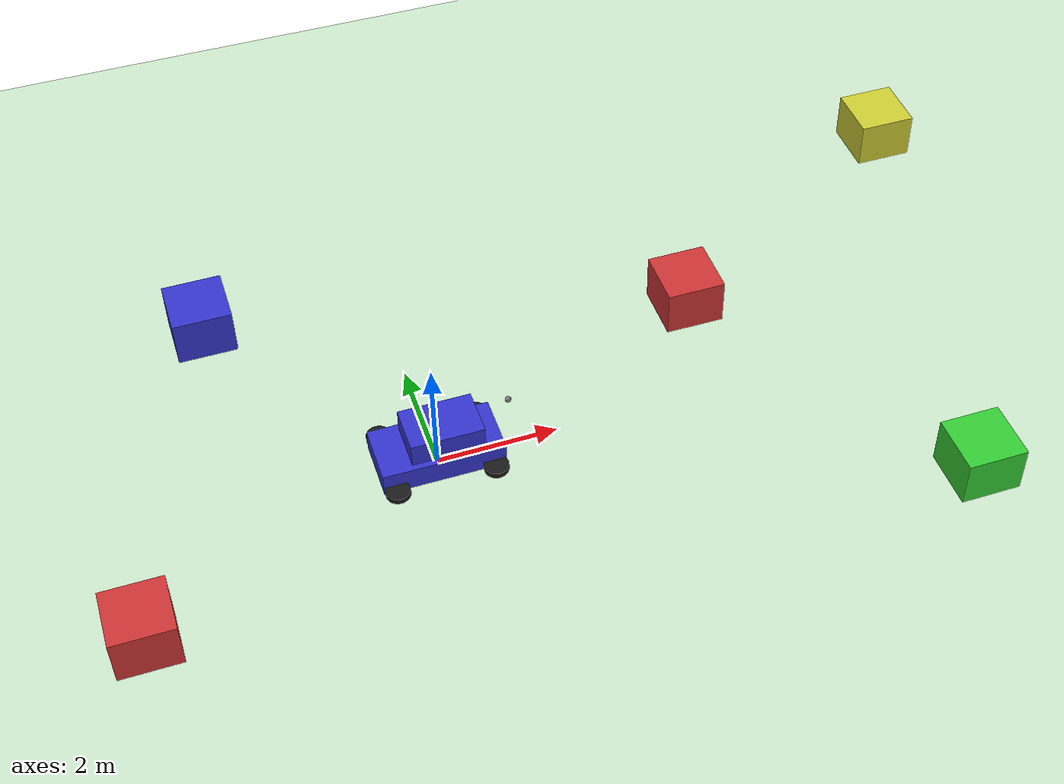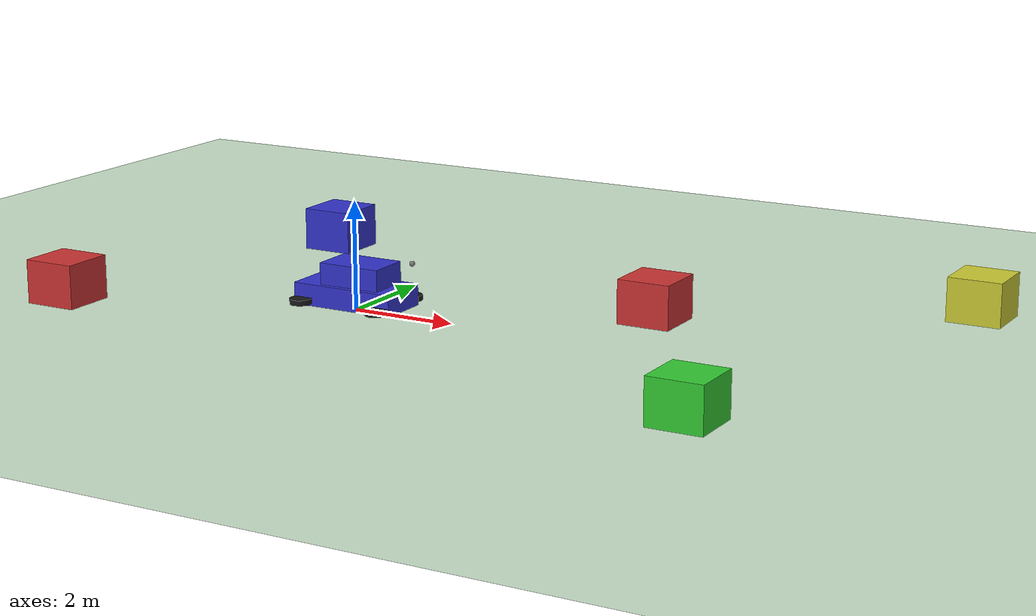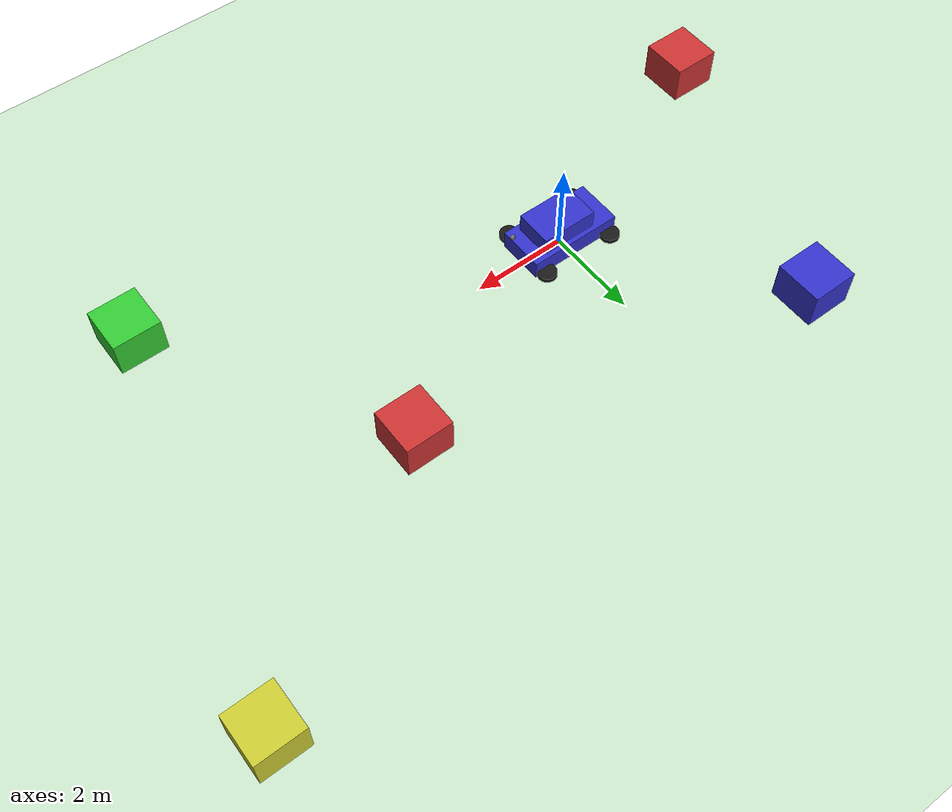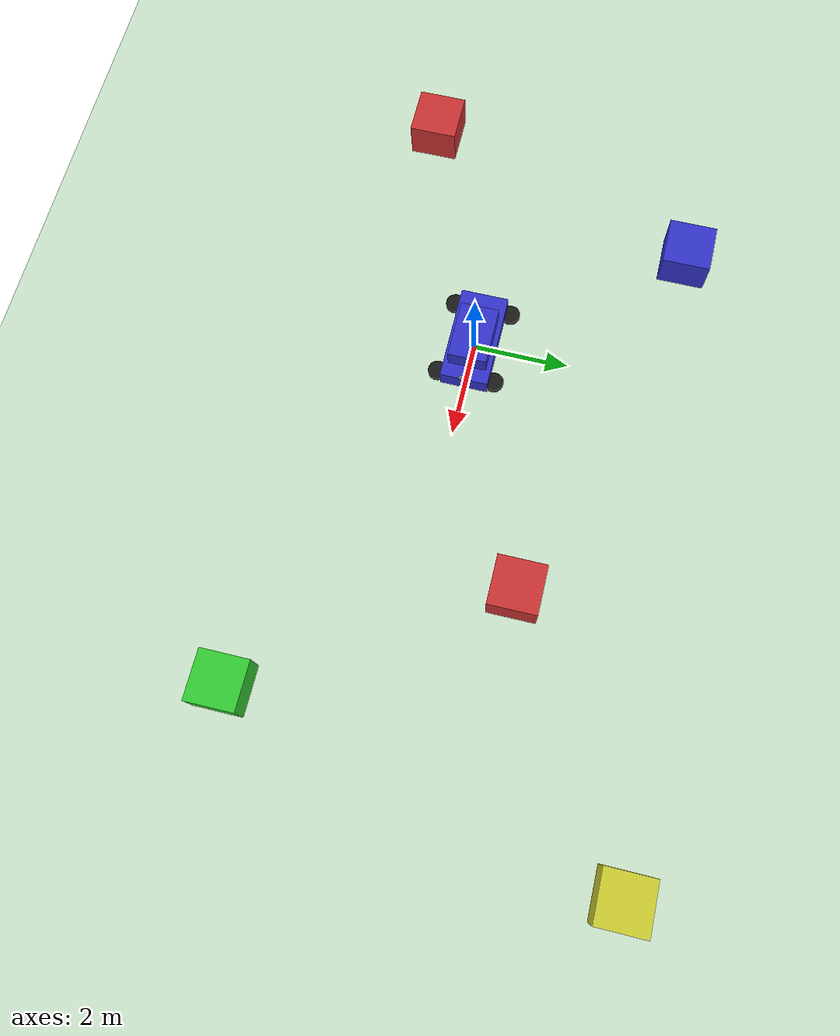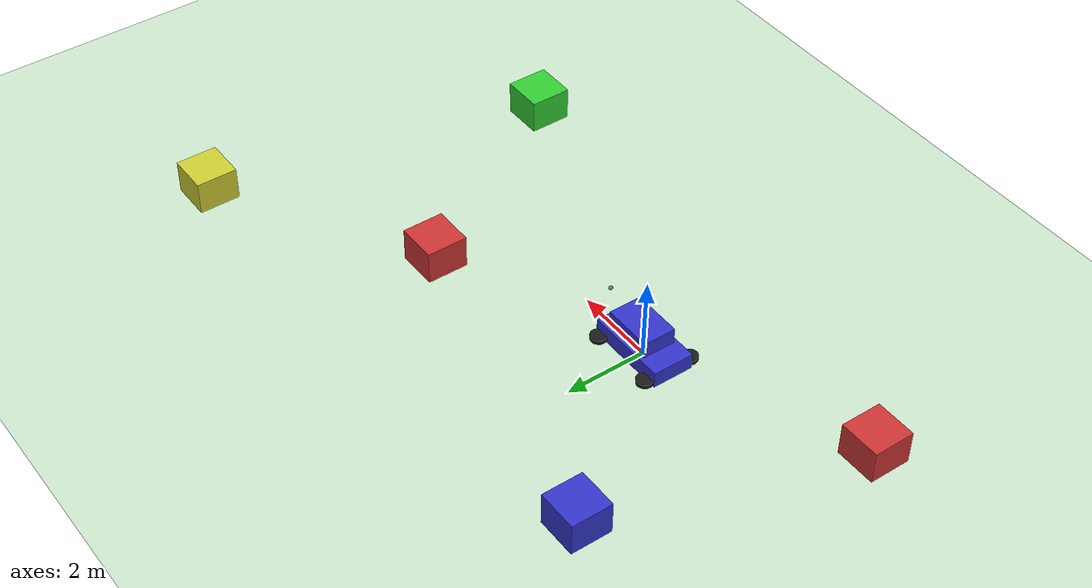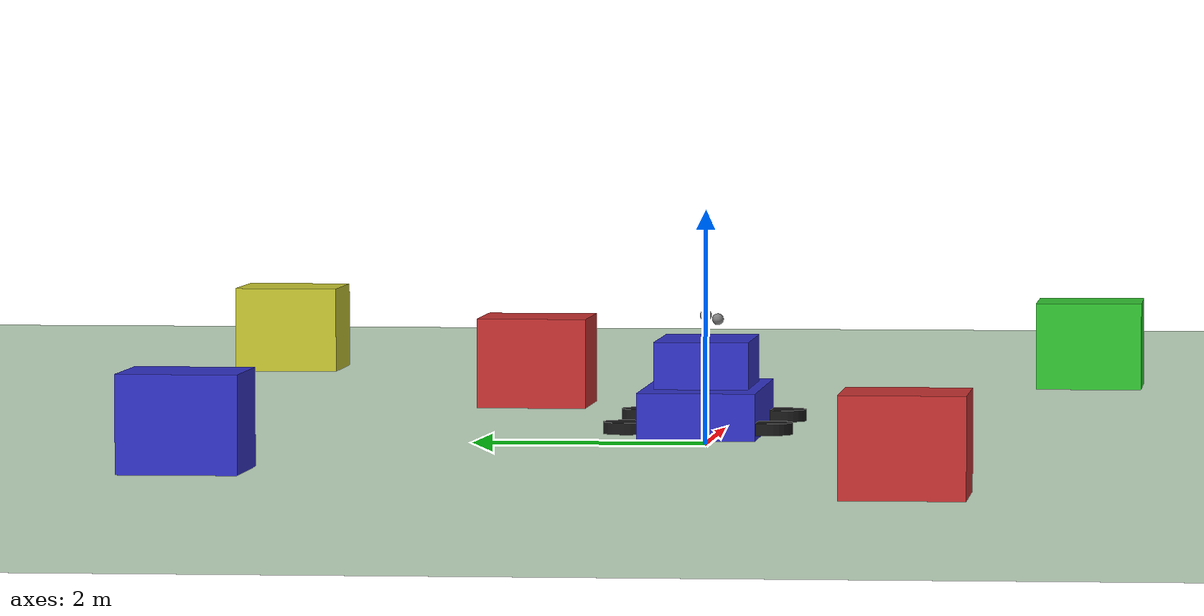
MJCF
<mujoco model="simple_car">
  <compiler angle="radian" inertiafromgeom="true"/>

  <option timestep="0.005" gravity="0 0 -9.81" iterations="200" solver="Newton" cone="elliptic" impratio="5" viscosity="0.1"/>

  <visual>
    <headlight diffuse="0.6 0.6 0.6" ambient="0.3 0.3 0.3" specular="0 0 0"/>
    <rgba haze="0.871 0.616 0.4 0.5"/>
    <global azimuth="-130" elevation="-20"/>
  </visual>

  <asset>
    <texture builtin="gradient" height="100" rgb1="0.9 0.9 0.9" rgb2="0.549 0.251 0.0" type="skybox" width="100"/>
    <texture name="texplane" type="2d" builtin="checker" rgb1="0.5 0.5 0.5" rgb2="0.55 0.55 0.55" width="100" height="100"/>
    <material name="MatPlane" reflectance="0.0" texture="texplane" texrepeat="1 1" texuniform="true"/>
    <material name="car_body" rgba="0.2 0.2 0.8 1"/>
    <material name="car_wheels" rgba="0.1 0.1 0.1 1"/>
    <material name="obstacle_red" rgba="0.8 0.2 0.2 1"/>
    <material name="obstacle_green" rgba="0.2 0.8 0.2 1"/>
    <material name="obstacle_blue" rgba="0.2 0.2 0.8 1"/>
    <material name="obstacle_yellow" rgba="0.8 0.8 0.2 1"/>
  </asset>

  <worldbody>
    <!-- 地面平面 -->
    <geom name="floor" friction="2.0 .1 .1" pos="0 0 0" size="0 0 0.125" type="plane" material="MatPlane" condim="3" conaffinity="1" contype="1" group="2" rgba="0.8 0.9 0.8 1" solref="0.08 1"/>
    <!-- 光照设置 -->
    <light cutoff="1000" diffuse="1.5 1.5 1.5" dir="-0 0 -1.3" directional="true" exponent="10" pos="0 0 10.3" specular=".1 .1 .1" castshadow="false"/>

    <!-- 小车主体 -->
    <body name="vehicle" pos="0 0 0.3">
      <!-- 自由关节，允许小车在空间中自由移动 -->
      <freejoint name="vehicle_joint"/>

      <!-- 车身底盘 -->
      <geom name="chassis" type="box" size="1 0.5 0.2" material="car_body" mass="15" friction="0.2 0.1 0.1" solref="0.08 1"/>
      <!-- 车厢 -->
      <geom name="cabin" type="box" size="0.6 0.4 0.3" pos="0.1 0 0.3" material="car_body" mass="5"/>

      <!-- 前轮 -->
      <body name="front_left_wheel" pos="0.8 0.6 -0.1">
        <!-- 轮子关节，绕Y轴旋转 -->
        <joint name="front_left_wheel_joint" type="hinge" axis="0 1 0" limited="false"/>
        <!-- 轮子几何体，圆柱形 -->
        <geom name="front_left_wheel_geom" type="cylinder" size="0.2 0.05" material="car_wheels" mass="1.5" friction="2.0 0.1 0.1" solref="0.08 1"/>
      </body>

      <body name="front_right_wheel" pos="0.8 -0.6 -0.1">
        <joint name="front_right_wheel_joint" type="hinge" axis="0 1 0" limited="false"/>
        <geom name="front_right_wheel_geom" type="cylinder" size="0.2 0.05" material="car_wheels" mass="1.5" friction="2.0 0.1 0.1" solref="0.08 1"/>
      </body>

      <!-- 后轮 -->
      <body name="rear_left_wheel" pos="-0.8 0.6 -0.1">
        <joint name="rear_left_wheel_joint" type="hinge" axis="0 1 0" limited="false"/>
        <geom name="rear_left_wheel_geom" type="cylinder" size="0.2 0.05" material="car_wheels" mass="1.5" friction="2.0 0.1 0.1" solref="0.08 1"/>
      </body>

      <body name="rear_right_wheel" pos="-0.8 -0.6 -0.1">
        <joint name="rear_right_wheel_joint" type="hinge" axis="0 1 0" limited="false"/>
        <geom name="rear_right_wheel_geom" type="cylinder" size="0.2 0.05" material="car_wheels" mass="1.5" friction="2.0 0.1 0.1" solref="0.08 1"/>
      </body>

      <!-- LiDAR传感器安装位置 -->
      <site name="lidar_site" pos="0 0 0.8" type="sphere" size="0.05"/>

      <!-- 摄像头传感器安装位置 -->
      <site name="camera_site" pos="1.2 0 0.7" type="sphere" size="0.05"/>
    </body>

    <!-- More obstacles for object detection -->
    <body name="obstacle1" pos="5 2 0.3">
      <geom name="obstacle1_geom" type="box" size="0.5 0.5 0.5" material="obstacle_red" mass="5"/>
    </body>

    <body name="obstacle2" pos="8 -3 0.3">
      <geom name="obstacle2_geom" type="box" size="0.5 0.5 0.5" material="obstacle_green" mass="5"/>
    </body>

    <body name="obstacle3" pos="-3 4 0.3">
      <geom name="obstacle3_geom" type="box" size="0.5 0.5 0.5" material="obstacle_blue" mass="5"/>
    </body>

    <body name="obstacle4" pos="10 5 0.3">
      <geom name="obstacle4_geom" type="box" size="0.5 0.5 0.5" material="obstacle_yellow" mass="5"/>
    </body>

    <body name="obstacle5" pos="-5 -2 0.3">
      <geom name="obstacle5_geom" type="box" size="0.5 0.5 0.5" material="obstacle_red" mass="5"/>
    </body>
  </worldbody>

  <actuator>
    <!-- 后轮驱动电机 -->
    <velocity name="rear_left_wheel_motor" joint="rear_left_wheel_joint" kv="5.0"/>
    <velocity name="rear_right_wheel_motor" joint="rear_right_wheel_joint" kv="5.0"/>

    <!-- 前轮转向伺服电机 -->
    <position name="front_left_steering" joint="front_left_wheel_joint" kp="15"/>
    <position name="front_right_steering" joint="front_right_wheel_joint" kp="15"/>
  </actuator>

  <sensor>
    <!-- IMU惯性测量单元数据 -->
    <accelerometer name="accelerometer" site="lidar_site"/>
    <gyro name="gyro" site="lidar_site"/>
    <!-- 温度传感器 -->
    <framepos name="temperature_sensor" objtype="site" objname="lidar_site"/>
  </sensor>
</mujoco>
